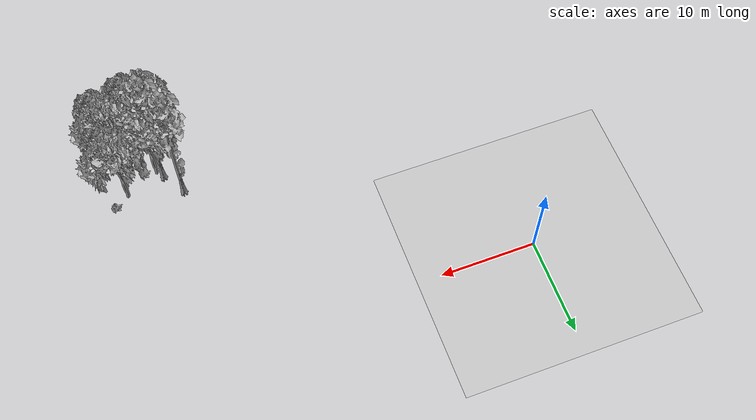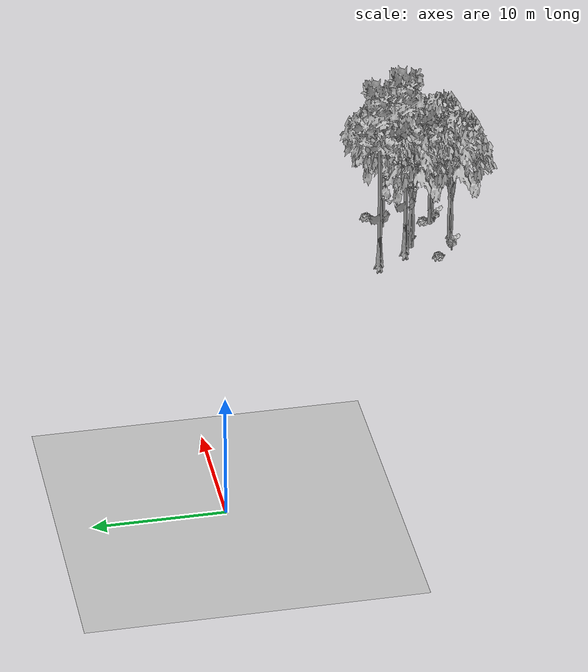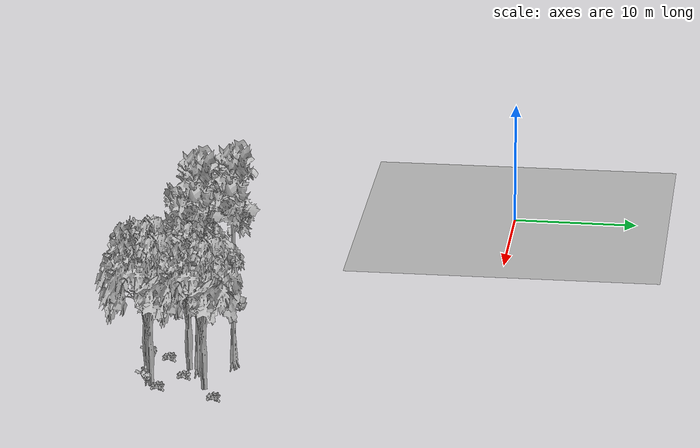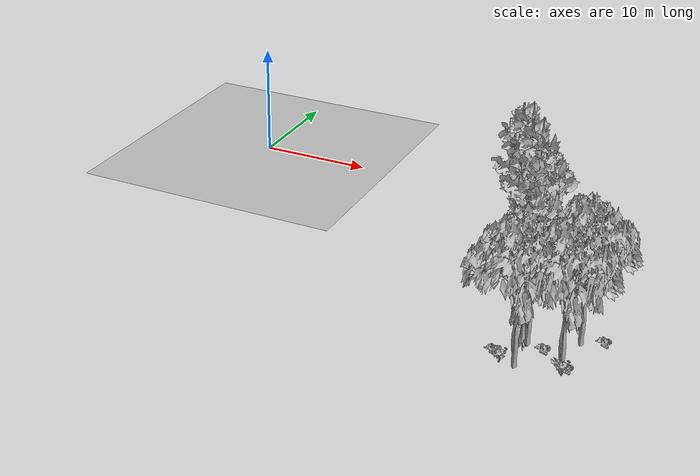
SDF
<sdf version="1.7">
 <world name="default">
  <model name="ground_plane">
   <static>1</static>
   <link name="link">
    <collision name="collision">
     <pose>-50 0 0 0 -0 0</pose>
     <geometry><plane><normal>0 0 1</normal><size>80 80</size></plane></geometry>
     <surface><contact><ode><min_depth>0.01</min_depth><max_vel>0</max_vel></ode></contact></surface>
    </collision>
    <visual name="grass">
     <cast_shadows>0</cast_shadows>
     <geometry>
      <mesh>
       <scale>0.46714285714285714 0.46714285714285714 0.1</scale>
       <uri>file://grass_plane/meshes/grass_plane.dae</uri>
      </mesh>
     </geometry>
    </visual>
   </link>
  </model>
  <model name="Tree 22">
   <static>1</static>
   <pose>33.53301788080597 -24.68634624659826 0 1.57079 -0 0</pose>
   <link name="link">
    <collision name="collision">
     <geometry><mesh><scale>3.5 5 3.5</scale><uri>model://tree_2/meshes/tree_2.obj</uri></mesh></geometry>
    </collision>
    <visual name="visual">
     <geometry><mesh><scale>3.5 5 3.5</scale><uri>model://tree_2/meshes/tree_2.obj</uri></mesh></geometry>
    </visual>
   </link>
  </model>
  <model name="Tree 245">
   <static>1</static>
   <pose>36.73265448498883 -23.81721831582734 0 1.57079 -0 0</pose>
   <link name="link">
    <collision name="collision">
     <geometry><mesh><scale>3.5 5 3.5</scale><uri>model://tree_2/meshes/tree_2.obj</uri></mesh></geometry>
    </collision>
    <visual name="visual">
     <geometry><mesh><scale>3.5 5 3.5</scale><uri>model://tree_2/meshes/tree_2.obj</uri></mesh></geometry>
    </visual>
   </link>
  </model>
  <model name="Tree 280">
   <static>1</static>
   <pose>33.45671313055735 -21.476914983274877 0 1.57079 -0 0</pose>
   <link name="link">
    <collision name="collision">
     <geometry><mesh><scale>3.5 5 3.5</scale><uri>model://tree_2/meshes/tree_2.obj</uri></mesh></geometry>
    </collision>
    <visual name="visual">
     <geometry><mesh><scale>3.5 5 3.5</scale><uri>model://tree_2/meshes/tree_2.obj</uri></mesh></geometry>
    </visual>
   </link>
  </model>
  <model name="Tree 312">
   <static>1</static>
   <pose>36.96678700732106 -19.78840884727866 0 1.57079 -0 0</pose>
   <link name="link">
    <collision name="collision">
     <geometry><mesh><scale>3.5 5 3.5</scale><uri>model://tree_2/meshes/tree_2.obj</uri></mesh></geometry>
    </collision>
    <visual name="visual">
     <geometry><mesh><scale>3.5 5 3.5</scale><uri>model://tree_2/meshes/tree_2.obj</uri></mesh></geometry>
    </visual>
   </link>
  </model>
  <model name="Tree 454">
   <static>1</static>
   <pose>31.512476212260594 -18.418768479289234 0 1.57079 -0 0</pose>
   <link name="link">
    <collision name="collision">
     <geometry><mesh><scale>3.5 5 3.5</scale><uri>model://tree_9/meshes/tree_9.obj</uri></mesh></geometry>
    </collision>
    <visual name="visual">
     <geometry><mesh><scale>3.5 5 3.5</scale><uri>model://tree_9/meshes/tree_9.obj</uri></mesh></geometry>
    </visual>
   </link>
  </model>
  <model name="Tree 474">
   <static>1</static>
   <pose>33.01934972576679 -20.865302754362595 0 1.57079 -0 0</pose>
   <link name="link">
    <collision name="collision">
     <geometry><mesh><scale>3.5 5 3.5</scale><uri>model://tree_9/meshes/tree_9.obj</uri></mesh></geometry>
    </collision>
    <visual name="visual">
     <geometry><mesh><scale>3.5 5 3.5</scale><uri>model://tree_9/meshes/tree_9.obj</uri></mesh></geometry>
    </visual>
   </link>
  </model>
  <model name="Bush 31">
   <static>1</static>
   <pose>36.965238425667124 -24.156608377702106 0 1.57079 -0 0</pose>
   <link name="link">
    <collision name="collision">
     <geometry><mesh><scale>2 2 2</scale><uri>model://bush_0/meshes/bush_0.obj</uri></mesh></geometry>
     <surface><contact><collide_without_contact>false</collide_without_contact></contact></surface>
    </collision>
    <visual name="visual">
     <geometry><mesh><scale>2 2 2</scale><uri>model://bush_0/meshes/bush_0.obj</uri></mesh></geometry>
    </visual>
   </link>
  </model>
  <model name="Bush 48">
   <static>1</static>
   <pose>32.464022286095755 -24.571762453710598 0 1.57079 -0 0</pose>
   <link name="link">
    <collision name="collision">
     <geometry><mesh><scale>2 2 2</scale><uri>model://bush_0/meshes/bush_0.obj</uri></mesh></geometry>
     <surface><contact><collide_without_contact>false</collide_without_contact></contact></surface>
    </collision>
    <visual name="visual">
     <geometry><mesh><scale>2 2 2</scale><uri>model://bush_0/meshes/bush_0.obj</uri></mesh></geometry>
    </visual>
   </link>
  </model>
  <model name="Bush 126">
   <static>1</static>
   <pose>31.52796505015914 -23.33284930066241 0 1.57079 -0 0</pose>
   <link name="link">
    <collision name="collision">
     <geometry><mesh><scale>2 2 2</scale><uri>model://bush_2/meshes/bush_2.obj</uri></mesh></geometry>
     <surface><contact><collide_without_contact>false</collide_without_contact></contact></surface>
    </collision>
    <visual name="visual">
     <geometry><mesh><scale>2 2 2</scale><uri>model://bush_2/meshes/bush_2.obj</uri></mesh></geometry>
    </visual>
   </link>
  </model>
  <model name="Bush 183">
   <static>1</static>
   <pose>38.54495410093675 -18.85488530865181 0 1.57079 -0 0</pose>
   <link name="link">
    <collision name="collision">
     <geometry><mesh><scale>2 2 2</scale><uri>model://bush_2/meshes/bush_2.obj</uri></mesh></geometry>
     <surface><contact><collide_without_contact>false</collide_without_contact></contact></surface>
    </collision>
    <visual name="visual">
     <geometry><mesh><scale>2 2 2</scale><uri>model://bush_2/meshes/bush_2.obj</uri></mesh></geometry>
    </visual>
   </link>
  </model>
  <model name="Bush 293">
   <static>1</static>
   <pose>34.807468320216984 -21.683207629410212 0 1.57079 -0 0</pose>
   <link name="link">
    <collision name="collision">
     <geometry><mesh><scale>2 2 2</scale><uri>model://bush_2/meshes/bush_2.obj</uri></mesh></geometry>
     <surface><contact><collide_without_contact>false</collide_without_contact></contact></surface>
    </collision>
    <visual name="visual">
     <geometry><mesh><scale>2 2 2</scale><uri>model://bush_2/meshes/bush_2.obj</uri></mesh></geometry>
    </visual>
   </link>
  </model>
  <model name="Bush 464">
   <static>1</static>
   <pose>37.02732986769301 -23.292679014937878 0 1.57079 -0 0</pose>
   <link name="link">
    <collision name="collision">
     <geometry><mesh><scale>2 2 2</scale><uri>model://bush_2/meshes/bush_2.obj</uri></mesh></geometry>
     <surface><contact><collide_without_contact>false</collide_without_contact></contact></surface>
    </collision>
    <visual name="visual">
     <geometry><mesh><scale>2 2 2</scale><uri>model://bush_2/meshes/bush_2.obj</uri></mesh></geometry>
    </visual>
   </link>
  </model>
 </world>
</sdf>
